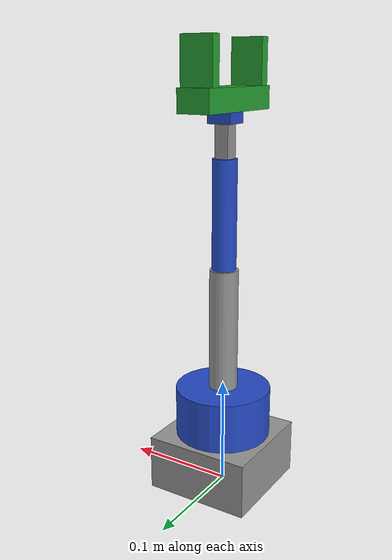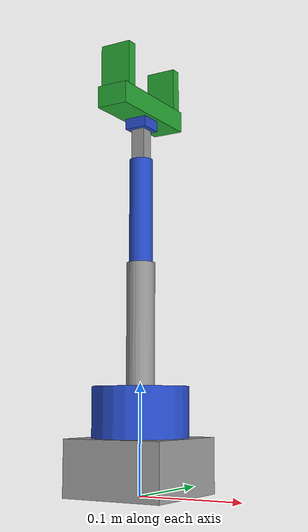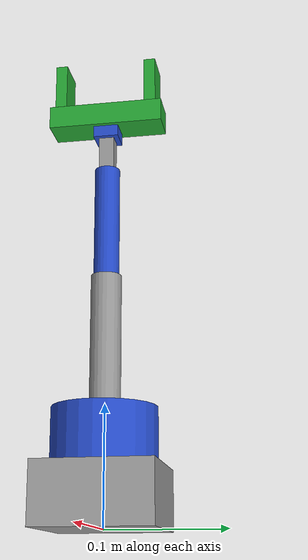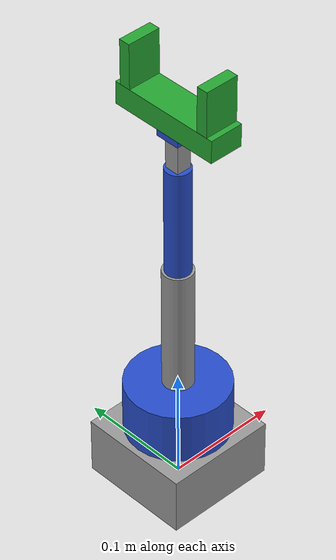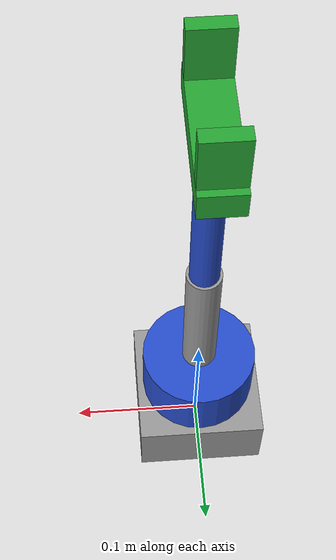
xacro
<?xml version="1.0"?>
<robot xmlns:xacro="http://www.ros.org/wiki/xacro" name="my_robot">

    <xacro:arg name="use_mock_hardware" default="true"/>
    <xacro:arg name="serial_port" default="/dev/ttyUSB0"/>
    <xacro:arg name="baud_rate" default="115200"/>
    <xacro:arg name="initial_positions_file"
               default="$(find my_robot_moveit_config)/config/initial_positions.yaml"/>

    <xacro:include filename="$(find my_robot_description)/urdf/my_robot.urdf.xacro" />

</robot>

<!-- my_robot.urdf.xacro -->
<robot name="my_robot" xmlns:xacro="http://www.ros.org/wiki/xacro">

    <xacro:arg name="use_mock_hardware" default="true"/>
    <xacro:arg name="serial_port" default="/dev/ttyUSB0"/>
    <xacro:arg name="baud_rate" default="115200"/>
    <xacro:arg name="initial_positions_file"
               default="$(find my_robot_description)/config/initial_positions.yaml"/>

    <xacro:include filename="common_properties.xacro" />
    <xacro:include filename="arm.xacro" />
    <xacro:include filename="gripper.xacro" />
    <xacro:include filename="my_robot.ros2_control.xacro" />

    <joint name="gripper_base_joint" type="fixed">
        <parent link="tool_link" />
        <child link="gripper_base_link" />
        <origin xyz="0 0 0" rpy="0 0 0" />
    </joint>

    <xacro:my_robot_ros2_control
        name="ArmSystem"
        use_mock_hardware="$(arg use_mock_hardware)"
        serial_port="$(arg serial_port)"
        baud_rate="$(arg baud_rate)"
        initial_positions_file="$(arg initial_positions_file)" />

</robot>

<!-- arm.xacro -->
<robot xmlns:xacro="http://www.ros.org/wiki/xacro">

    <link name="base_link">
        <visual>
            <geometry>
                <box size="0.098 0.098 0.05087" />
            </geometry>
            <origin xyz="0 0 0.025435" rpy="0 0 0" />
            <material name="grey" />
        </visual>
        <collision>
            <geometry>
                <box size="0.098 0.098 0.05087" />
            </geometry>
            <origin xyz="0 0 0.025435" rpy="0 0 0" />
        </collision>
    </link>

    <link name="shoulder_link">
        <visual>
            <geometry>
                <cylinder length="0.04601" radius="0.044" />
            </geometry>
            <origin xyz="0 0 0.023005" rpy="0 0 0" />
            <material name="blue" />
        </visual>
        <collision>
            <geometry>
                <cylinder length="0.04601" radius="0.044" />
            </geometry>
            <origin xyz="0 0 0.023005" rpy="0 0 0" />
        </collision>
    </link>

    <link name="arm_link">
        <visual>
            <geometry>
                <cylinder length="0.11312" radius="0.013" />
            </geometry>
            <origin xyz="0 0 0.05656" rpy="0 0 0" />
            <material name="grey" />
        </visual>
        <collision>
            <geometry>
                <box size="0.026 0.026 0.11312" />
            </geometry>
            <origin xyz="0 0 0.05656" rpy="0 0 0" />
        </collision>
    </link>

    <link name="elbow_link">
        <visual>
            <geometry>
                <cylinder length="0.09795" radius="0.010885" />
            </geometry>
            <origin xyz="0 0 0.048975" rpy="0 0 0" />
            <material name="blue" />
        </visual>
        <collision>
            <geometry>
                <box size="0.02177 0.02177 0.09795" />
            </geometry>
            <origin xyz="0 0 0.048975" rpy="0 0 0" />
        </collision>
    </link>

    <link name="forearm_link">
        <visual>
            <geometry>
                <box size="0.013 0.013 0.02908" />
            </geometry>
            <origin xyz="0 0 0.01454" rpy="0 0 0" />
            <material name="grey" />
        </visual>
        <collision>
            <geometry>
                <box size="0.013 0.013 0.02908" />
            </geometry>
            <origin xyz="0 0 0.01454" rpy="0 0 0" />
        </collision>
    </link>

    <link name="wrist_link">
        <visual>
            <geometry>
                <box size="0.02177 0.02177 0.01999" />
            </geometry>
            <origin xyz="0 0 0.009995" rpy="0 0 0" />
            <material name="blue" />
        </visual>
        <collision>
            <geometry>
                <box size="0.02177 0.02177 0.01099" />
            </geometry>
            <origin xyz="0 0 0.009995" rpy="0 0 0" />
        </collision>
    </link>

    <link name="tool_link" />

    <joint name="joint1" type="revolute">
        <parent link="base_link" />
        <child link="shoulder_link" />
        <origin xyz="0 0 0.05087" rpy="0 0 0" />
        <axis xyz="0 0 1" />
        <limit effort="1000.0" velocity="1.0" lower="-1.57" upper="1.57" />
    </joint>

    <joint name="joint2" type="revolute">
        <parent link="shoulder_link" />
        <child link="arm_link" />
        <origin xyz="0 0 0.04601" rpy="0 0 0" />
        <axis xyz="0 1 0" />
        <limit effort="1000.0" velocity="1.0" lower="-1.57" upper="1.57" />
    </joint>

    <joint name="joint3" type="revolute">
        <parent link="arm_link" />
        <child link="elbow_link" />
        <origin xyz="0 0 0.11312" rpy="0 0 0" />
        <axis xyz="0 1 0" />
        <limit effort="1000.0" velocity="1.0" lower="-1.57" upper="1.57" />
    </joint>

    <joint name="joint4" type="revolute">
        <parent link="elbow_link" />
        <child link="forearm_link" />
        <origin xyz="0 0 0.09795" rpy="0 0 0" />
        <axis xyz="0 0 1" />
        <limit effort="1000.0" velocity="1.0" lower="-1.57" upper="1.57" />
    </joint>

    <joint name="joint5" type="revolute">
        <parent link="forearm_link" />
        <child link="wrist_link" />
        <origin xyz="0 0 0.02908" rpy="0 0 0" />
        <axis xyz="0 1 0" />
        <limit effort="1000.0" velocity="1.0" lower="-1.57" upper="1.57" />
    </joint>

    <joint name="hand_tool_joint" type="fixed">
        <parent link="wrist_link" />
        <child link="tool_link" />
        <origin xyz="0 0 0.009995" rpy="0 0 0" />
    </joint>

</robot>

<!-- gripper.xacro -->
<robot xmlns:xacro="http://www.ros.org/wiki/xacro">

    <link name="gripper_base_link">
        <visual>
            <geometry>
                <box size="0.1 0.03 0.02" />
            </geometry>
            <origin xyz="0 0 0.01" rpy="0 0 1.57" />
            <material name="dark_green" />
        </visual>
        <collision>
            <geometry>
                <box size="0.1 0.03 0.02" />
            </geometry>
            <origin xyz="0 0 0.01" rpy="0 0 1.57" />
        </collision>
    </link>

    <link name="gripper_left_finger_link">
        <visual>
            <geometry>
                <box size="0.01 0.03 0.04" />
            </geometry>
            <origin xyz="0 0 0.02" rpy="0 0 1.57" />
            <material name="light_green" />
        </visual>
        <collision>
            <geometry>
                <box size="0.01 0.03 0.04" />
            </geometry>
            <origin xyz="0 0 0.02" rpy="0 0 1.57" />
        </collision>
    </link>

    <link name="gripper_right_finger_link">
        <visual>
            <geometry>
                <box size="0.01 0.03 0.04" />
            </geometry>
            <origin xyz="0 0 0.02" rpy="0 0 1.57" />
            <material name="light_green" />
        </visual>
        <collision>
            <geometry>
                <box size="0.01 0.03 0.04" />
            </geometry>
            <origin xyz="0 0 0.02" rpy="0 0 1.57" />
        </collision>
    </link>

    <joint name="gripper_left_finger_joint" type="prismatic">
        <parent link="gripper_base_link" />
        <child link="gripper_left_finger_link" />
        <origin xyz="0 -0.04 0.02" rpy="0 0 0" />
        <axis xyz="0 1 0" />
        <limit effort="1000.0" velocity="1.0" lower="0.0" upper="0.035" />
    </joint>

    <joint name="gripper_right_finger_joint" type="prismatic">
        <parent link="gripper_base_link" />
        <child link="gripper_right_finger_link" />
        <origin xyz="0 0.04 0.02" rpy="0 0 0" />
        <axis xyz="0 1 0" />
        <mimic joint="gripper_left_finger_joint" multiplier="-1.0" />
        <limit effort="1000.0" velocity="1.0" lower="-0.035" upper="0.0" />
    </joint>

</robot>
